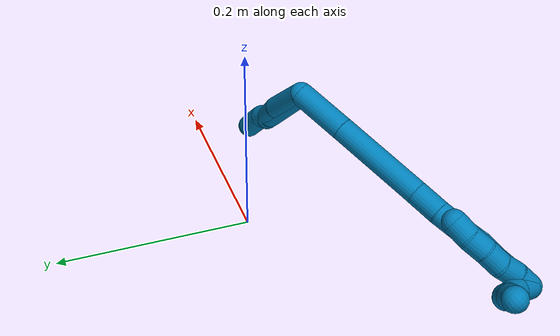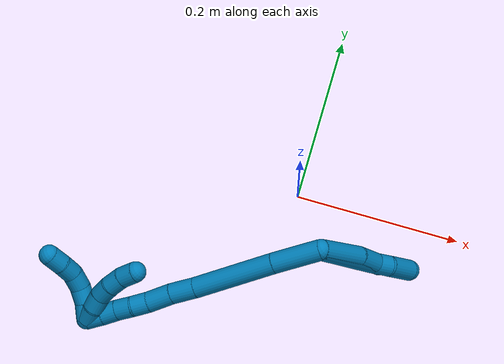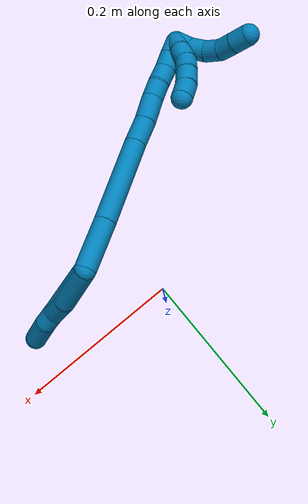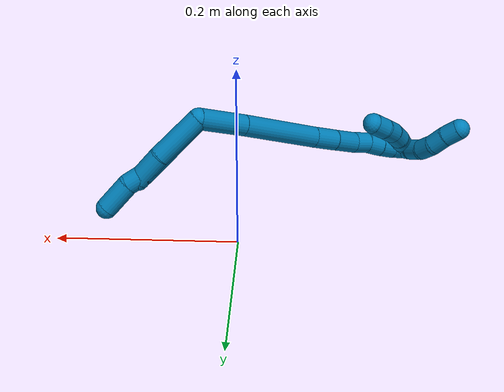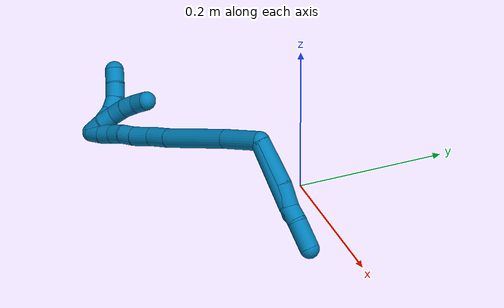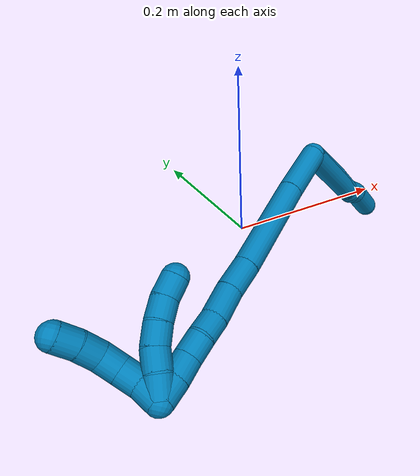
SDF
<sdf version="1.7">
 <world name="default">
  <model name="9">
   <static>0</static>
   <link name="9">
    <collision name="collision-cylinder-e_1_2_8">
     <pose>0.036002 0.026846 0.002168 -1.49023 0.928507 -0.865501</pose>
     <geometry><cylinder><radius>0.0125</radius><length>0.089924</length></cylinder></geometry>
     <surface>
      <friction><ode><mu>1.16</mu><mu2>1.16</mu2><slip1>0</slip1><slip2>0</slip2></ode></friction>
      <contact><ode><kp>1e+06</kp><kd>1</kd><max_vel>0</max_vel><min_depth>0.001</min_depth></ode></contact>
     </surface>
    </collision>
    <visual name="visual-cylinder-e_1_2_8">
     <pose>0.036002 0.026846 0.002168 -1.49023 0.928507 -0.865501</pose>
     <geometry><cylinder><radius>0.0125</radius><length>0.089924</length></cylinder></geometry>
     <material><ambient>0 0.490196 0.709804 1</ambient></material>
    </visual>
    <collision name="collision-cylinder-e_2_8_9">
     <pose>0.081337 0.059109 0.007231 -1.07989 0.988737 -0.624954</pose>
     <geometry><cylinder><radius>0.0125</radius><length>0.022345</length></cylinder></geometry>
     <surface>
      <friction><ode><mu>1.16</mu><mu2>1.16</mu2><slip1>0</slip1><slip2>0</slip2></ode></friction>
      <contact><ode><kp>1e+06</kp><kd>1</kd><max_vel>0</max_vel><min_depth>0.001</min_depth></ode></contact>
     </surface>
    </collision>
    <visual name="visual-cylinder-e_2_8_9">
     <pose>0.081337 0.059109 0.007231 -1.07989 0.988737 -0.624954</pose>
     <geometry><cylinder><radius>0.0125</radius><length>0.022345</length></cylinder></geometry>
     <material><ambient>0 0.490196 0.709804 1</ambient></material>
    </visual>
    <collision name="collision-cylinder-e_3_9_6">
     <pose>0.105283 0.076436 0.010834 -1.51143 0.886084 -0.840937</pose>
     <geometry><cylinder><radius>0.0125</radius><length>0.037731</length></cylinder></geometry>
     <surface>
      <friction><ode><mu>1.16</mu><mu2>1.16</mu2><slip1>0</slip1><slip2>0</slip2></ode></friction>
      <contact><ode><kp>1e+06</kp><kd>1</kd><max_vel>0</max_vel><min_depth>0.001</min_depth></ode></contact>
     </surface>
    </collision>
    <visual name="visual-cylinder-e_3_9_6">
     <pose>0.105283 0.076436 0.010834 -1.51143 0.886084 -0.840937</pose>
     <geometry><cylinder><radius>0.0125</radius><length>0.037731</length></cylinder></geometry>
     <material><ambient>0 0.490196 0.709804 1</ambient></material>
    </visual>
    <collision name="collision-cylinder-e_1_2_10">
     <pose>0.024307 0.018858 0.003186 -1.40342 0.904145 -0.778965</pose>
     <geometry><cylinder><radius>0.0125</radius><length>0.061857</length></cylinder></geometry>
     <surface>
      <friction><ode><mu>1.16</mu><mu2>1.16</mu2><slip1>0</slip1><slip2>0</slip2></ode></friction>
      <contact><ode><kp>1e+06</kp><kd>1</kd><max_vel>0</max_vel><min_depth>0.001</min_depth></ode></contact>
     </surface>
    </collision>
    <visual name="visual-cylinder-e_1_2_10">
     <pose>0.024307 0.018858 0.003186 -1.40342 0.904145 -0.778965</pose>
     <geometry><cylinder><radius>0.0125</radius><length>0.061857</length></cylinder></geometry>
     <material><ambient>0 0.490196 0.709804 1</ambient></material>
    </visual>
    <collision name="collision-cylinder-e_2_10_5">
     <pose>0.064363 0.048444 0.005626 -1.64023 0.971666 -1.03016</pose>
     <geometry><cylinder><radius>0.0125</radius><length>0.038143</length></cylinder></geometry>
     <surface>
      <friction><ode><mu>1.16</mu><mu2>1.16</mu2><slip1>0</slip1><slip2>0</slip2></ode></friction>
      <contact><ode><kp>1e+06</kp><kd>1</kd><max_vel>0</max_vel><min_depth>0.001</min_depth></ode></contact>
     </surface>
    </collision>
    <visual name="visual-cylinder-e_2_10_5">
     <pose>0.064363 0.048444 0.005626 -1.64023 0.971666 -1.03016</pose>
     <geometry><cylinder><radius>0.0125</radius><length>0.038143</length></cylinder></geometry>
     <material><ambient>0 0.490196 0.709804 1</ambient></material>
    </visual>
    <collision name="collision-cylinder-e_1_2_11">
     <pose>-0.010391 -0.004287 -0.027062 2.98449 -0.3625 -2.33023</pose>
     <geometry><cylinder><radius>0.0125</radius><length>0.058608</length></cylinder></geometry>
     <surface>
      <friction><ode><mu>1.16</mu><mu2>1.16</mu2><slip1>0</slip1><slip2>0</slip2></ode></friction>
      <contact><ode><kp>1e+06</kp><kd>1</kd><max_vel>0</max_vel><min_depth>0.001</min_depth></ode></contact>
     </surface>
    </collision>
    <visual name="visual-cylinder-e_1_2_11">
     <pose>-0.010391 -0.004287 -0.027062 2.98449 -0.3625 -2.33023</pose>
     <geometry><cylinder><radius>0.0125</radius><length>0.058608</length></cylinder></geometry>
     <material><ambient>0 0.490196 0.709804 1</ambient></material>
    </visual>
    <collision name="collision-cylinder-e_2_11_12">
     <pose>-0.036942 -0.015508 -0.101009 2.99476 -0.328582 -2.30648</pose>
     <geometry><cylinder><radius>0.0125</radius><length>0.100148</length></cylinder></geometry>
     <surface>
      <friction><ode><mu>1.16</mu><mu2>1.16</mu2><slip1>0</slip1><slip2>0</slip2></ode></friction>
      <contact><ode><kp>1e+06</kp><kd>1</kd><max_vel>0</max_vel><min_depth>0.001</min_depth></ode></contact>
     </surface>
    </collision>
    <visual name="visual-cylinder-e_2_11_12">
     <pose>-0.036942 -0.015508 -0.101009 2.99476 -0.328582 -2.30648</pose>
     <geometry><cylinder><radius>0.0125</radius><length>0.100148</length></cylinder></geometry>
     <material><ambient>0 0.490196 0.709804 1</ambient></material>
    </visual>
    <collision name="collision-cylinder-e_3_12_13">
     <pose>-0.058803 -0.02451 -0.161734 2.9933 -0.386974 -2.41685</pose>
     <geometry><cylinder><radius>0.0125</radius><length>0.030221</length></cylinder></geometry>
     <surface>
      <friction><ode><mu>1.16</mu><mu2>1.16</mu2><slip1>0</slip1><slip2>0</slip2></ode></friction>
      <contact><ode><kp>1e+06</kp><kd>1</kd><max_vel>0</max_vel><min_depth>0.001</min_depth></ode></contact>
     </surface>
    </collision>
    <visual name="visual-cylinder-e_3_12_13">
     <pose>-0.058803 -0.02451 -0.161734 2.9933 -0.386974 -2.41685</pose>
     <geometry><cylinder><radius>0.0125</radius><length>0.030221</length></cylinder></geometry>
     <material><ambient>0 0.490196 0.709804 1</ambient></material>
    </visual>
    <collision name="collision-cylinder-e_4_13_14">
     <pose>-0.069033 -0.029365 -0.189891 2.94927 -0.300934 -2.00832</pose>
     <geometry><cylinder><radius>0.0125</radius><length>0.030546</length></cylinder></geometry>
     <surface>
      <friction><ode><mu>1.16</mu><mu2>1.16</mu2><slip1>0</slip1><slip2>0</slip2></ode></friction>
      <contact><ode><kp>1e+06</kp><kd>1</kd><max_vel>0</max_vel><min_depth>0.001</min_depth></ode></contact>
     </surface>
    </collision>
    <visual name="visual-cylinder-e_4_13_14">
     <pose>-0.069033 -0.029365 -0.189891 2.94927 -0.300934 -2.00832</pose>
     <geometry><cylinder><radius>0.0125</radius><length>0.030546</length></cylinder></geometry>
     <material><ambient>0 0.490196 0.709804 1</ambient></material>
    </visual>
    <collision name="collision-cylinder-e_5_14_15">
     <pose>-0.077666 -0.034464 -0.213166 2.88909 -0.417728 -2.06246</pose>
     <geometry><cylinder><radius>0.0125</radius><length>0.020241</length></cylinder></geometry>
     <surface>
      <friction><ode><mu>1.16</mu><mu2>1.16</mu2><slip1>0</slip1><slip2>0</slip2></ode></friction>
      <contact><ode><kp>1e+06</kp><kd>1</kd><max_vel>0</max_vel><min_depth>0.001</min_depth></ode></contact>
     </surface>
    </collision>
    <visual name="visual-cylinder-e_5_14_15">
     <pose>-0.077666 -0.034464 -0.213166 2.88909 -0.417728 -2.06246</pose>
     <geometry><cylinder><radius>0.0125</radius><length>0.020241</length></cylinder></geometry>
     <material><ambient>0 0.490196 0.709804 1</ambient></material>
    </visual>
    <collision name="collision-cylinder-e_6_15_16">
     <pose>-0.085314 -0.03737 -0.231514 3.07836 -0.359988 -2.7974</pose>
     <geometry><cylinder><radius>0.0125</radius><length>0.020109</length></cylinder></geometry>
     <surface>
      <friction><ode><mu>1.16</mu><mu2>1.16</mu2><slip1>0</slip1><slip2>0</slip2></ode></friction>
      <contact><ode><kp>1e+06</kp><kd>1</kd><max_vel>0</max_vel><min_depth>0.001</min_depth></ode></contact>
     </surface>
    </collision>
    <visual name="visual-cylinder-e_6_15_16">
     <pose>-0.085314 -0.03737 -0.231514 3.07836 -0.359988 -2.7974</pose>
     <geometry><cylinder><radius>0.0125</radius><length>0.020109</length></cylinder></geometry>
     <material><ambient>0 0.490196 0.709804 1</ambient></material>
    </visual>
    <collision name="collision-cylinder-e_7_16_17">
     <pose>-0.092049 -0.039437 -0.250323 2.98654 -0.323235 -2.25229</pose>
     <geometry><cylinder><radius>0.0125</radius><length>0.020106</length></cylinder></geometry>
     <surface>
      <friction><ode><mu>1.16</mu><mu2>1.16</mu2><slip1>0</slip1><slip2>0</slip2></ode></friction>
      <contact><ode><kp>1e+06</kp><kd>1</kd><max_vel>0</max_vel><min_depth>0.001</min_depth></ode></contact>
     </surface>
    </collision>
    <visual name="visual-cylinder-e_7_16_17">
     <pose>-0.092049 -0.039437 -0.250323 2.98654 -0.323235 -2.25229</pose>
     <geometry><cylinder><radius>0.0125</radius><length>0.020106</length></cylinder></geometry>
     <material><ambient>0 0.490196 0.709804 1</ambient></material>
    </visual>
    <collision name="collision-cylinder-e_8_17_1">
     <pose>-0.099276 -0.042893 -0.268686 2.92335 -0.41474 -2.18142</pose>
     <geometry><cylinder><radius>0.0125</radius><length>0.020021</length></cylinder></geometry>
     <surface>
      <friction><ode><mu>1.16</mu><mu2>1.16</mu2><slip1>0</slip1><slip2>0</slip2></ode></friction>
      <contact><ode><kp>1e+06</kp><kd>1</kd><max_vel>0</max_vel><min_depth>0.001</min_depth></ode></contact>
     </surface>
    </collision>
    <visual name="visual-cylinder-e_8_17_1">
     <pose>-0.099276 -0.042893 -0.268686 2.92335 -0.41474 -2.18142</pose>
     <geometry><cylinder><radius>0.0125</radius><length>0.020021</length></cylinder></geometry>
     <material><ambient>0 0.490196 0.709804 1</ambient></material>
    </visual>
    <collision name="collision-cylinder-e_1_1_18">
     <pose>-0.106758 -0.04478 -0.268244 -0.01028 -0.35213 0.001829</pose>
     <geometry><cylinder><radius>0.0125</radius><length>0.02</length></cylinder></geometry>
     <surface>
      <friction><ode><mu>1.16</mu><mu2>1.16</mu2><slip1>0</slip1><slip2>0</slip2></ode></friction>
      <contact><ode><kp>1e+06</kp><kd>1</kd><max_vel>0</max_vel><min_depth>0.001</min_depth></ode></contact>
     </surface>
    </collision>
    <visual name="visual-cylinder-e_1_1_18">
     <pose>-0.106758 -0.04478 -0.268244 -0.01028 -0.35213 0.001829</pose>
     <geometry><cylinder><radius>0.0125</radius><length>0.02</length></cylinder></geometry>
     <material><ambient>0 0.490196 0.709804 1</ambient></material>
    </visual>
    <collision name="collision-cylinder-e_2_18_19">
     <pose>-0.113729 -0.043021 -0.249648 -0.178578 -0.359907 0.032571</pose>
     <geometry><cylinder><radius>0.0125</radius><length>0.02</length></cylinder></geometry>
     <surface>
      <friction><ode><mu>1.16</mu><mu2>1.16</mu2><slip1>0</slip1><slip2>0</slip2></ode></friction>
      <contact><ode><kp>1e+06</kp><kd>1</kd><max_vel>0</max_vel><min_depth>0.001</min_depth></ode></contact>
     </surface>
    </collision>
    <visual name="visual-cylinder-e_2_18_19">
     <pose>-0.113729 -0.043021 -0.249648 -0.178578 -0.359907 0.032571</pose>
     <geometry><cylinder><radius>0.0125</radius><length>0.02</length></cylinder></geometry>
     <material><ambient>0 0.490196 0.709804 1</ambient></material>
    </visual>
    <collision name="collision-cylinder-e_3_19_20">
     <pose>-0.118679 -0.041082 -0.230544 -0.027873 -0.143306 0.002001</pose>
     <geometry><cylinder><radius>0.0125</radius><length>0.02</length></cylinder></geometry>
     <surface>
      <friction><ode><mu>1.16</mu><mu2>1.16</mu2><slip1>0</slip1><slip2>0</slip2></ode></friction>
      <contact><ode><kp>1e+06</kp><kd>1</kd><max_vel>0</max_vel><min_depth>0.001</min_depth></ode></contact>
     </surface>
    </collision>
    <visual name="visual-cylinder-e_3_19_20">
     <pose>-0.118679 -0.041082 -0.230544 -0.027873 -0.143306 0.002001</pose>
     <geometry><cylinder><radius>0.0125</radius><length>0.02</length></cylinder></geometry>
     <material><ambient>0 0.490196 0.709804 1</ambient></material>
    </visual>
    <collision name="collision-cylinder-e_4_20_21">
     <pose>-0.120049 -0.039634 -0.21072 -0.117577 0.005807 -0.000342</pose>
     <geometry><cylinder><radius>0.0125</radius><length>0.02</length></cylinder></geometry>
     <surface>
      <friction><ode><mu>1.16</mu><mu2>1.16</mu2><slip1>0</slip1><slip2>0</slip2></ode></friction>
      <contact><ode><kp>1e+06</kp><kd>1</kd><max_vel>0</max_vel><min_depth>0.001</min_depth></ode></contact>
     </surface>
    </collision>
    <visual name="visual-cylinder-e_4_20_21">
     <pose>-0.120049 -0.039634 -0.21072 -0.117577 0.005807 -0.000342</pose>
     <geometry><cylinder><radius>0.0125</radius><length>0.02</length></cylinder></geometry>
     <material><ambient>0 0.490196 0.709804 1</ambient></material>
    </visual>
    <collision name="collision-cylinder-e_5_21_4">
     <pose>-0.118119 -0.038374 -0.190966 -0.008825 0.188364 -0.000834</pose>
     <geometry><cylinder><radius>0.0125</radius><length>0.02</length></cylinder></geometry>
     <surface>
      <friction><ode><mu>1.16</mu><mu2>1.16</mu2><slip1>0</slip1><slip2>0</slip2></ode></friction>
      <contact><ode><kp>1e+06</kp><kd>1</kd><max_vel>0</max_vel><min_depth>0.001</min_depth></ode></contact>
     </surface>
    </collision>
    <visual name="visual-cylinder-e_5_21_4">
     <pose>-0.118119 -0.038374 -0.190966 -0.008825 0.188364 -0.000834</pose>
     <geometry><cylinder><radius>0.0125</radius><length>0.02</length></cylinder></geometry>
     <material><ambient>0 0.490196 0.709804 1</ambient></material>
    </visual>
    <collision name="collision-cylinder-e_1_1_22">
     <pose>-0.11105 -0.040637 -0.272928 -0.733667 -0.885153 0.360246</pose>
     <geometry><cylinder><radius>0.0125</radius><length>0.02</length></cylinder></geometry>
     <surface>
      <friction><ode><mu>1.16</mu><mu2>1.16</mu2><slip1>0</slip1><slip2>0</slip2></ode></friction>
      <contact><ode><kp>1e+06</kp><kd>1</kd><max_vel>0</max_vel><min_depth>0.001</min_depth></ode></contact>
     </surface>
    </collision>
    <visual name="visual-cylinder-e_1_1_22">
     <pose>-0.11105 -0.040637 -0.272928 -0.733667 -0.885153 0.360246</pose>
     <geometry><cylinder><radius>0.0125</radius><length>0.02</length></cylinder></geometry>
     <material><ambient>0 0.490196 0.709804 1</ambient></material>
    </visual>
    <collision name="collision-cylinder-e_2_22_23">
     <pose>-0.127648 -0.033155 -0.264905 -0.773538 -1.08831 0.483255</pose>
     <geometry><cylinder><radius>0.0125</radius><length>0.02</length></cylinder></geometry>
     <surface>
      <friction><ode><mu>1.16</mu><mu2>1.16</mu2><slip1>0</slip1><slip2>0</slip2></ode></friction>
      <contact><ode><kp>1e+06</kp><kd>1</kd><max_vel>0</max_vel><min_depth>0.001</min_depth></ode></contact>
     </surface>
    </collision>
    <visual name="visual-cylinder-e_2_22_23">
     <pose>-0.127648 -0.033155 -0.264905 -0.773538 -1.08831 0.483255</pose>
     <geometry><cylinder><radius>0.0125</radius><length>0.02</length></cylinder></geometry>
     <material><ambient>0 0.490196 0.709804 1</ambient></material>
    </visual>
    <collision name="collision-cylinder-e_3_23_24">
     <pose>-0.146004 -0.029829 -0.258456 -0.026948 -1.25229 0.01949</pose>
     <geometry><cylinder><radius>0.0125</radius><length>0.02</length></cylinder></geometry>
     <surface>
      <friction><ode><mu>1.16</mu><mu2>1.16</mu2><slip1>0</slip1><slip2>0</slip2></ode></friction>
      <contact><ode><kp>1e+06</kp><kd>1</kd><max_vel>0</max_vel><min_depth>0.001</min_depth></ode></contact>
     </surface>
    </collision>
    <visual name="visual-cylinder-e_3_23_24">
     <pose>-0.146004 -0.029829 -0.258456 -0.026948 -1.25229 0.01949</pose>
     <geometry><cylinder><radius>0.0125</radius><length>0.02</length></cylinder></geometry>
     <material><ambient>0 0.490196 0.709804 1</ambient></material>
    </visual>
    <collision name="collision-cylinder-e_4_24_25">
     <pose>-0.164915 -0.032683 -0.253673 1.05854 -1.22689 -0.781323</pose>
     <geometry><cylinder><radius>0.0125</radius><length>0.02</length></cylinder></geometry>
     <surface>
      <friction><ode><mu>1.16</mu><mu2>1.16</mu2><slip1>0</slip1><slip2>0</slip2></ode></friction>
      <contact><ode><kp>1e+06</kp><kd>1</kd><max_vel>0</max_vel><min_depth>0.001</min_depth></ode></contact>
     </surface>
    </collision>
    <visual name="visual-cylinder-e_4_24_25">
     <pose>-0.164915 -0.032683 -0.253673 1.05854 -1.22689 -0.781323</pose>
     <geometry><cylinder><radius>0.0125</radius><length>0.02</length></cylinder></geometry>
     <material><ambient>0 0.490196 0.709804 1</ambient></material>
    </visual>
    <collision name="collision-cylinder-e_5_25_3">
     <pose>-0.184042 -0.037951 -0.251525 1.36137 -1.33038 -1.13187</pose>
     <geometry><cylinder><radius>0.0125</radius><length>0.02</length></cylinder></geometry>
     <surface>
      <friction><ode><mu>1.16</mu><mu2>1.16</mu2><slip1>0</slip1><slip2>0</slip2></ode></friction>
      <contact><ode><kp>1e+06</kp><kd>1</kd><max_vel>0</max_vel><min_depth>0.001</min_depth></ode></contact>
     </surface>
    </collision>
    <visual name="visual-cylinder-e_5_25_3">
     <pose>-0.184042 -0.037951 -0.251525 1.36137 -1.33038 -1.13187</pose>
     <geometry><cylinder><radius>0.0125</radius><length>0.02</length></cylinder></geometry>
     <material><ambient>0 0.490196 0.709804 1</ambient></material>
    </visual>
    <collision name="collision-sphere-3">
     <pose>-0.193754 -0.04028 -0.25103 0 -0 0</pose>
     <geometry><sphere><radius>0.0125</radius></sphere></geometry>
     <surface>
      <friction><ode><mu>1.16</mu><mu2>1.16</mu2><slip1>0</slip1><slip2>0</slip2></ode></friction>
      <contact><ode><kp>1e+06</kp><kd>1</kd><max_vel>0</max_vel><min_depth>0.001</min_depth></ode></contact>
     </surface>
    </collision>
    <visual name="visual-sphere-3">
     <pose>-0.193754 -0.04028 -0.25103 0 -0 0</pose>
     <geometry><sphere><radius>0.0125</radius></sphere></geometry>
     <material><ambient>0 0.490196 0.709804 1</ambient></material>
    </visual>
    <collision name="collision-sphere-25">
     <pose>-0.174329 -0.035622 -0.25202 0 -0 0</pose>
     <geometry><sphere><radius>0.0125</radius></sphere></geometry>
     <surface>
      <friction><ode><mu>1.16</mu><mu2>1.16</mu2><slip1>0</slip1><slip2>0</slip2></ode></friction>
      <contact><ode><kp>1e+06</kp><kd>1</kd><max_vel>0</max_vel><min_depth>0.001</min_depth></ode></contact>
     </surface>
    </collision>
    <visual name="visual-sphere-25">
     <pose>-0.174329 -0.035622 -0.25202 0 -0 0</pose>
     <geometry><sphere><radius>0.0125</radius></sphere></geometry>
     <material><ambient>0 0.490196 0.709804 1</ambient></material>
    </visual>
    <collision name="collision-sphere-24">
     <pose>-0.155501 -0.029745 -0.255325 0 -0 0</pose>
     <geometry><sphere><radius>0.0125</radius></sphere></geometry>
     <surface>
      <friction><ode><mu>1.16</mu><mu2>1.16</mu2><slip1>0</slip1><slip2>0</slip2></ode></friction>
      <contact><ode><kp>1e+06</kp><kd>1</kd><max_vel>0</max_vel><min_depth>0.001</min_depth></ode></contact>
     </surface>
    </collision>
    <visual name="visual-sphere-24">
     <pose>-0.155501 -0.029745 -0.255325 0 -0 0</pose>
     <geometry><sphere><radius>0.0125</radius></sphere></geometry>
     <material><ambient>0 0.490196 0.709804 1</ambient></material>
    </visual>
    <collision name="collision-sphere-23">
     <pose>-0.136506 -0.029913 -0.261586 0 -0 0</pose>
     <geometry><sphere><radius>0.0125</radius></sphere></geometry>
     <surface>
      <friction><ode><mu>1.16</mu><mu2>1.16</mu2><slip1>0</slip1><slip2>0</slip2></ode></friction>
      <contact><ode><kp>1e+06</kp><kd>1</kd><max_vel>0</max_vel><min_depth>0.001</min_depth></ode></contact>
     </surface>
    </collision>
    <visual name="visual-sphere-23">
     <pose>-0.136506 -0.029913 -0.261586 0 -0 0</pose>
     <geometry><sphere><radius>0.0125</radius></sphere></geometry>
     <material><ambient>0 0.490196 0.709804 1</ambient></material>
    </visual>
    <collision name="collision-sphere-22">
     <pose>-0.11879 -0.036397 -0.268225 0 -0 0</pose>
     <geometry><sphere><radius>0.0125</radius></sphere></geometry>
     <surface>
      <friction><ode><mu>1.16</mu><mu2>1.16</mu2><slip1>0</slip1><slip2>0</slip2></ode></friction>
      <contact><ode><kp>1e+06</kp><kd>1</kd><max_vel>0</max_vel><min_depth>0.001</min_depth></ode></contact>
     </surface>
    </collision>
    <visual name="visual-sphere-22">
     <pose>-0.11879 -0.036397 -0.268225 0 -0 0</pose>
     <geometry><sphere><radius>0.0125</radius></sphere></geometry>
     <material><ambient>0 0.490196 0.709804 1</ambient></material>
    </visual>
    <collision name="collision-sphere-4">
     <pose>-0.116246 -0.038287 -0.181143 0 -0 0</pose>
     <geometry><sphere><radius>0.0125</radius></sphere></geometry>
     <surface>
      <friction><ode><mu>1.16</mu><mu2>1.16</mu2><slip1>0</slip1><slip2>0</slip2></ode></friction>
      <contact><ode><kp>1e+06</kp><kd>1</kd><max_vel>0</max_vel><min_depth>0.001</min_depth></ode></contact>
     </surface>
    </collision>
    <visual name="visual-sphere-4">
     <pose>-0.116246 -0.038287 -0.181143 0 -0 0</pose>
     <geometry><sphere><radius>0.0125</radius></sphere></geometry>
     <material><ambient>0 0.490196 0.709804 1</ambient></material>
    </visual>
    <collision name="collision-sphere-21">
     <pose>-0.119991 -0.03846 -0.200789 0 -0 0</pose>
     <geometry><sphere><radius>0.0125</radius></sphere></geometry>
     <surface>
      <friction><ode><mu>1.16</mu><mu2>1.16</mu2><slip1>0</slip1><slip2>0</slip2></ode></friction>
      <contact><ode><kp>1e+06</kp><kd>1</kd><max_vel>0</max_vel><min_depth>0.001</min_depth></ode></contact>
     </surface>
    </collision>
    <visual name="visual-sphere-21">
     <pose>-0.119991 -0.03846 -0.200789 0 -0 0</pose>
     <geometry><sphere><radius>0.0125</radius></sphere></geometry>
     <material><ambient>0 0.490196 0.709804 1</ambient></material>
    </visual>
    <collision name="collision-sphere-20">
     <pose>-0.120107 -0.040807 -0.22065 0 -0 0</pose>
     <geometry><sphere><radius>0.0125</radius></sphere></geometry>
     <surface>
      <friction><ode><mu>1.16</mu><mu2>1.16</mu2><slip1>0</slip1><slip2>0</slip2></ode></friction>
      <contact><ode><kp>1e+06</kp><kd>1</kd><max_vel>0</max_vel><min_depth>0.001</min_depth></ode></contact>
     </surface>
    </collision>
    <visual name="visual-sphere-20">
     <pose>-0.120107 -0.040807 -0.22065 0 -0 0</pose>
     <geometry><sphere><radius>0.0125</radius></sphere></geometry>
     <material><ambient>0 0.490196 0.709804 1</ambient></material>
    </visual>
    <collision name="collision-sphere-5">
     <pose>0.080113 0.059173 0.00488 0 -0 0</pose>
     <geometry><sphere><radius>0.0125</radius></sphere></geometry>
     <surface>
      <friction><ode><mu>1.16</mu><mu2>1.16</mu2><slip1>0</slip1><slip2>0</slip2></ode></friction>
      <contact><ode><kp>1e+06</kp><kd>1</kd><max_vel>0</max_vel><min_depth>0.001</min_depth></ode></contact>
     </surface>
    </collision>
    <visual name="visual-sphere-5">
     <pose>0.080113 0.059173 0.00488 0 -0 0</pose>
     <geometry><sphere><radius>0.0125</radius></sphere></geometry>
     <material><ambient>0 0.490196 0.709804 1</ambient></material>
    </visual>
    <collision name="collision-sphere-10">
     <pose>0.048613 0.037715 0.006372 0 -0 0</pose>
     <geometry><sphere><radius>0.0125</radius></sphere></geometry>
     <surface>
      <friction><ode><mu>1.16</mu><mu2>1.16</mu2><slip1>0</slip1><slip2>0</slip2></ode></friction>
      <contact><ode><kp>1e+06</kp><kd>1</kd><max_vel>0</max_vel><min_depth>0.001</min_depth></ode></contact>
     </surface>
    </collision>
    <visual name="visual-sphere-10">
     <pose>0.048613 0.037715 0.006372 0 -0 0</pose>
     <geometry><sphere><radius>0.0125</radius></sphere></geometry>
     <material><ambient>0 0.490196 0.709804 1</ambient></material>
    </visual>
    <collision name="collision-sphere-6">
     <pose>0.119897 0.088347 0.011542 0 -0 0</pose>
     <geometry><sphere><radius>0.0125</radius></sphere></geometry>
     <surface>
      <friction><ode><mu>1.16</mu><mu2>1.16</mu2><slip1>0</slip1><slip2>0</slip2></ode></friction>
      <contact><ode><kp>1e+06</kp><kd>1</kd><max_vel>0</max_vel><min_depth>0.001</min_depth></ode></contact>
     </surface>
    </collision>
    <visual name="visual-sphere-6">
     <pose>0.119897 0.088347 0.011542 0 -0 0</pose>
     <geometry><sphere><radius>0.0125</radius></sphere></geometry>
     <material><ambient>0 0.490196 0.709804 1</ambient></material>
    </visual>
    <collision name="collision-sphere-9">
     <pose>0.09067 0.064526 0.010126 0 -0 0</pose>
     <geometry><sphere><radius>0.0125</radius></sphere></geometry>
     <surface>
      <friction><ode><mu>1.16</mu><mu2>1.16</mu2><slip1>0</slip1><slip2>0</slip2></ode></friction>
      <contact><ode><kp>1e+06</kp><kd>1</kd><max_vel>0</max_vel><min_depth>0.001</min_depth></ode></contact>
     </surface>
    </collision>
    <visual name="visual-sphere-9">
     <pose>0.09067 0.064526 0.010126 0 -0 0</pose>
     <geometry><sphere><radius>0.0125</radius></sphere></geometry>
     <material><ambient>0 0.490196 0.709804 1</ambient></material>
    </visual>
    <collision name="collision-sphere-2">
     <geometry><sphere><radius>0.0125</radius></sphere></geometry>
     <surface>
      <friction><ode><mu>1.16</mu><mu2>1.16</mu2><slip1>0</slip1><slip2>0</slip2></ode></friction>
      <contact><ode><kp>1e+06</kp><kd>1</kd><max_vel>0</max_vel><min_depth>0.001</min_depth></ode></contact>
     </surface>
    </collision>
    <visual name="visual-sphere-2">
     <geometry><sphere><radius>0.0125</radius></sphere></geometry>
     <material><ambient>0 0.490196 0.709804 1</ambient></material>
    </visual>
    <collision name="collision-sphere-19">
     <pose>-0.117251 -0.041358 -0.240438 0 -0 0</pose>
     <geometry><sphere><radius>0.0125</radius></sphere></geometry>
     <surface>
      <friction><ode><mu>1.16</mu><mu2>1.16</mu2><slip1>0</slip1><slip2>0</slip2></ode></friction>
      <contact><ode><kp>1e+06</kp><kd>1</kd><max_vel>0</max_vel><min_depth>0.001</min_depth></ode></contact>
     </surface>
    </collision>
    <visual name="visual-sphere-19">
     <pose>-0.117251 -0.041358 -0.240438 0 -0 0</pose>
     <geometry><sphere><radius>0.0125</radius></sphere></geometry>
     <material><ambient>0 0.490196 0.709804 1</ambient></material>
    </visual>
    <collision name="collision-sphere-8">
     <pose>0.072004 0.053692 0.004335 0 -0 0</pose>
     <geometry><sphere><radius>0.0125</radius></sphere></geometry>
     <surface>
      <friction><ode><mu>1.16</mu><mu2>1.16</mu2><slip1>0</slip1><slip2>0</slip2></ode></friction>
      <contact><ode><kp>1e+06</kp><kd>1</kd><max_vel>0</max_vel><min_depth>0.001</min_depth></ode></contact>
     </surface>
    </collision>
    <visual name="visual-sphere-8">
     <pose>0.072004 0.053692 0.004335 0 -0 0</pose>
     <geometry><sphere><radius>0.0125</radius></sphere></geometry>
     <material><ambient>0 0.490196 0.709804 1</ambient></material>
    </visual>
    <collision name="collision-sphere-11">
     <pose>-0.020783 -0.008573 -0.054124 0 -0 0</pose>
     <geometry><sphere><radius>0.0125</radius></sphere></geometry>
     <surface>
      <friction><ode><mu>1.16</mu><mu2>1.16</mu2><slip1>0</slip1><slip2>0</slip2></ode></friction>
      <contact><ode><kp>1e+06</kp><kd>1</kd><max_vel>0</max_vel><min_depth>0.001</min_depth></ode></contact>
     </surface>
    </collision>
    <visual name="visual-sphere-11">
     <pose>-0.020783 -0.008573 -0.054124 0 -0 0</pose>
     <geometry><sphere><radius>0.0125</radius></sphere></geometry>
     <material><ambient>0 0.490196 0.709804 1</ambient></material>
    </visual>
    <collision name="collision-sphere-12">
     <pose>-0.053101 -0.022442 -0.147894 0 -0 0</pose>
     <geometry><sphere><radius>0.0125</radius></sphere></geometry>
     <surface>
      <friction><ode><mu>1.16</mu><mu2>1.16</mu2><slip1>0</slip1><slip2>0</slip2></ode></friction>
      <contact><ode><kp>1e+06</kp><kd>1</kd><max_vel>0</max_vel><min_depth>0.001</min_depth></ode></contact>
     </surface>
    </collision>
    <visual name="visual-sphere-12">
     <pose>-0.053101 -0.022442 -0.147894 0 -0 0</pose>
     <geometry><sphere><radius>0.0125</radius></sphere></geometry>
     <material><ambient>0 0.490196 0.709804 1</ambient></material>
    </visual>
    <collision name="collision-sphere-13">
     <pose>-0.064506 -0.026577 -0.175573 0 -0 0</pose>
     <geometry><sphere><radius>0.0125</radius></sphere></geometry>
     <surface>
      <friction><ode><mu>1.16</mu><mu2>1.16</mu2><slip1>0</slip1><slip2>0</slip2></ode></friction>
      <contact><ode><kp>1e+06</kp><kd>1</kd><max_vel>0</max_vel><min_depth>0.001</min_depth></ode></contact>
     </surface>
    </collision>
    <visual name="visual-sphere-13">
     <pose>-0.064506 -0.026577 -0.175573 0 -0 0</pose>
     <geometry><sphere><radius>0.0125</radius></sphere></geometry>
     <material><ambient>0 0.490196 0.709804 1</ambient></material>
    </visual>
    <collision name="collision-sphere-14">
     <pose>-0.07356 -0.032153 -0.204209 0 -0 0</pose>
     <geometry><sphere><radius>0.0125</radius></sphere></geometry>
     <surface>
      <friction><ode><mu>1.16</mu><mu2>1.16</mu2><slip1>0</slip1><slip2>0</slip2></ode></friction>
      <contact><ode><kp>1e+06</kp><kd>1</kd><max_vel>0</max_vel><min_depth>0.001</min_depth></ode></contact>
     </surface>
    </collision>
    <visual name="visual-sphere-14">
     <pose>-0.07356 -0.032153 -0.204209 0 -0 0</pose>
     <geometry><sphere><radius>0.0125</radius></sphere></geometry>
     <material><ambient>0 0.490196 0.709804 1</ambient></material>
    </visual>
    <collision name="collision-sphere-15">
     <pose>-0.081772 -0.036775 -0.222123 0 -0 0</pose>
     <geometry><sphere><radius>0.0125</radius></sphere></geometry>
     <surface>
      <friction><ode><mu>1.16</mu><mu2>1.16</mu2><slip1>0</slip1><slip2>0</slip2></ode></friction>
      <contact><ode><kp>1e+06</kp><kd>1</kd><max_vel>0</max_vel><min_depth>0.001</min_depth></ode></contact>
     </surface>
    </collision>
    <visual name="visual-sphere-15">
     <pose>-0.081772 -0.036775 -0.222123 0 -0 0</pose>
     <geometry><sphere><radius>0.0125</radius></sphere></geometry>
     <material><ambient>0 0.490196 0.709804 1</ambient></material>
    </visual>
    <collision name="collision-sphere-16">
     <pose>-0.088855 -0.037965 -0.240905 0 -0 0</pose>
     <geometry><sphere><radius>0.0125</radius></sphere></geometry>
     <surface>
      <friction><ode><mu>1.16</mu><mu2>1.16</mu2><slip1>0</slip1><slip2>0</slip2></ode></friction>
      <contact><ode><kp>1e+06</kp><kd>1</kd><max_vel>0</max_vel><min_depth>0.001</min_depth></ode></contact>
     </surface>
    </collision>
    <visual name="visual-sphere-16">
     <pose>-0.088855 -0.037965 -0.240905 0 -0 0</pose>
     <geometry><sphere><radius>0.0125</radius></sphere></geometry>
     <material><ambient>0 0.490196 0.709804 1</ambient></material>
    </visual>
    <collision name="collision-sphere-17">
     <pose>-0.095242 -0.040909 -0.259741 0 -0 0</pose>
     <geometry><sphere><radius>0.0125</radius></sphere></geometry>
     <surface>
      <friction><ode><mu>1.16</mu><mu2>1.16</mu2><slip1>0</slip1><slip2>0</slip2></ode></friction>
      <contact><ode><kp>1e+06</kp><kd>1</kd><max_vel>0</max_vel><min_depth>0.001</min_depth></ode></contact>
     </surface>
    </collision>
    <visual name="visual-sphere-17">
     <pose>-0.095242 -0.040909 -0.259741 0 -0 0</pose>
     <geometry><sphere><radius>0.0125</radius></sphere></geometry>
     <material><ambient>0 0.490196 0.709804 1</ambient></material>
    </visual>
    <collision name="collision-sphere-1">
     <pose>-0.103309 -0.044876 -0.27763 0 -0 0</pose>
     <geometry><sphere><radius>0.0125</radius></sphere></geometry>
     <surface>
      <friction><ode><mu>1.16</mu><mu2>1.16</mu2><slip1>0</slip1><slip2>0</slip2></ode></friction>
      <contact><ode><kp>1e+06</kp><kd>1</kd><max_vel>0</max_vel><min_depth>0.001</min_depth></ode></contact>
     </surface>
    </collision>
    <visual name="visual-sphere-1">
     <pose>-0.103309 -0.044876 -0.27763 0 -0 0</pose>
     <geometry><sphere><radius>0.0125</radius></sphere></geometry>
     <material><ambient>0 0.490196 0.709804 1</ambient></material>
    </visual>
    <collision name="collision-sphere-18">
     <pose>-0.110207 -0.044683 -0.258859 0 -0 0</pose>
     <geometry><sphere><radius>0.0125</radius></sphere></geometry>
     <surface>
      <friction><ode><mu>1.16</mu><mu2>1.16</mu2><slip1>0</slip1><slip2>0</slip2></ode></friction>
      <contact><ode><kp>1e+06</kp><kd>1</kd><max_vel>0</max_vel><min_depth>0.001</min_depth></ode></contact>
     </surface>
    </collision>
    <visual name="visual-sphere-18">
     <pose>-0.110207 -0.044683 -0.258859 0 -0 0</pose>
     <geometry><sphere><radius>0.0125</radius></sphere></geometry>
     <material><ambient>0 0.490196 0.709804 1</ambient></material>
    </visual>
    <inertial>
     <pose>-0.038072 -0.006043 -0.119504 0 -0 0</pose>
     <mass>0.75</mass>
     <inertia>
      <ixx>-0.000155</ixx>
      <ixy>0</ixy>
      <ixz>0</ixz>
      <iyy>4.4e-05</iyy>
      <iyz>0</iyz>
      <izz>-8.7e-05</izz>
     </inertia>
    </inertial>
   </link>
   <pose>0.047384 -0.075036 0.114137 -0.832278 0.434142 -0.458293</pose>
  </model>
 </world>
</sdf>
